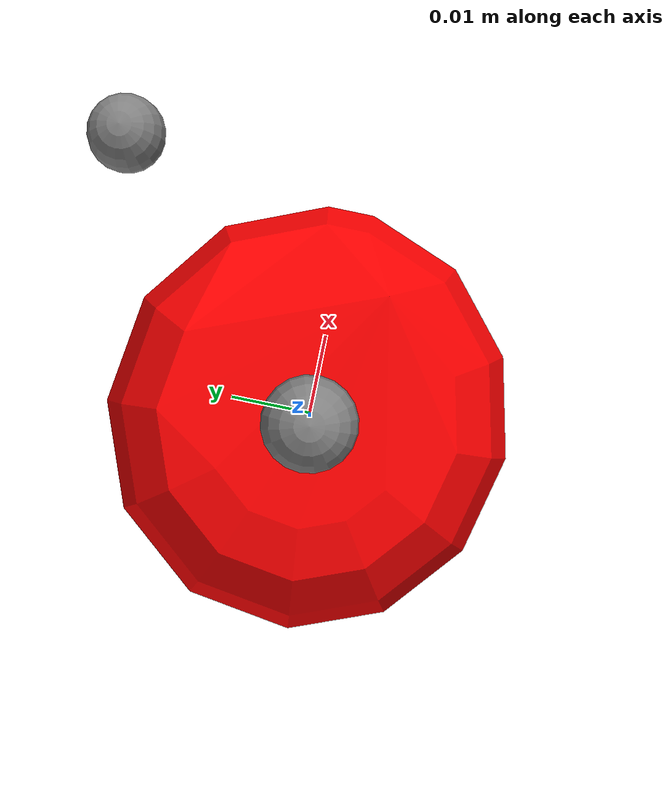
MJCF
<!-- sample of a general object defined in mujoco -->
<mujoco model="apple">
	<asset>
		<mesh file="meshes/apple.stl" name="apple_mesh"/>
		<texture file="../textures/metal.png" type="2d" name="tex-metal"/>
		<material name="metal" reflectance="0.7" texrepeat="1 1" texture="tex-metal" texuniform="true"/>
	</asset>
	<worldbody>
		<body>
			<body name="collision">
				<geom pos="0 0 0" mesh="apple_mesh" type="mesh" solimp="0.998 0.998 0.001" solref="0.001 1" density="50" friction="0.95 0.3 0.1" rgba="1 0 0 1" group="1" condim="4"/>
			</body>
			<body name="visual">
				<geom pos="0 0 0" mesh="apple_mesh" type="mesh" rgba="1 0 0 1"  conaffinity="0" contype="0"  group="1" mass="0.0001"/>
				<geom pos="0 0 0" mesh="apple_mesh" type="mesh" rgba="1 0 0 1"  conaffinity="0" contype="0"  group="0" mass="0.0001"/>
			</body>
			<site pos="0 0 -0.03" name="bottom_site"/>
			<site pos="0 0 0.025" name="top_site"/>
			<site pos="0.03 0.03 0" name="horizontal_radius_site"/>
		</body>
	</worldbody>
</mujoco>
